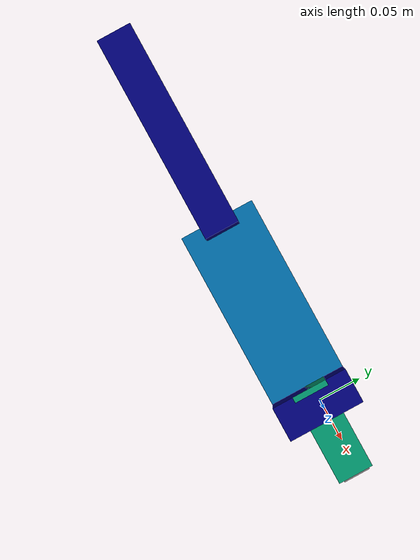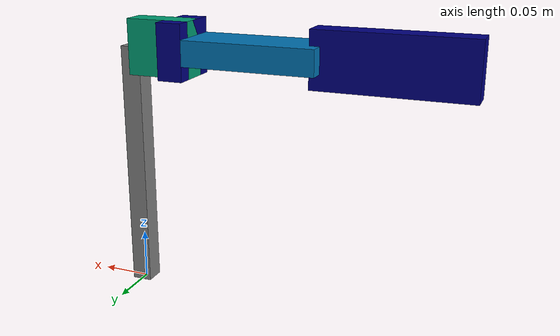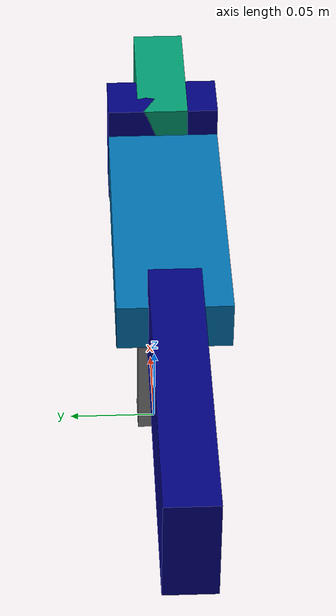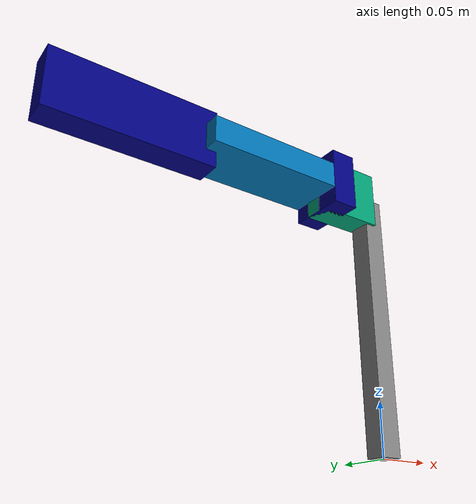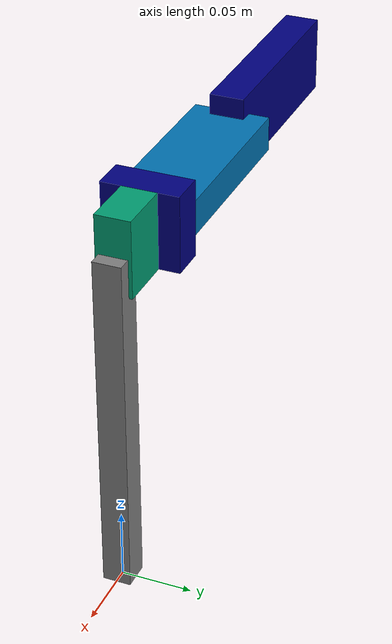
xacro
<?xml version="1.0"?>

<robot xmlns:xacro="http://www.ros.org/wiki/xacro" name="machine2">
    <!-- LAUNCH: ros2 launch urdf_tutorial display.launch.py model:=/home/marvin/machine2_ws/src/machine2_description/urdf/machine2.urdf.xacro -->

    <!-- PROPERTIES = VARIABLES -->
    <xacro:property name="PI" value="3.14159"/>
    <xacro:property name="effort" value="1000.0"/>
    <xacro:property name="velocity" value="2.5"/>

    <!-- MACROS = FUNCTIONS -->

    <!-- LINKS -->
    <link name="world"/>

    <link name="base_link">
        <visual>
            <origin xyz="0 0 ${0.25 / 2}" rpy="0 0 0"/>
            <geometry>
                <!-- length, width, height in meters -->
                <box size="0.02 0.02 0.25" />
            </geometry>
            <material name="grey">
                <color rgba="0.5 0.5 0.5 1" />
            </material>
        </visual>
    </link>

    <link name="shoulder_link">
        <visual>
            <origin xyz="0 0 ${0.065 / 2}" rpy="0 0 0"/>
            <geometry>
                <!-- length, width, height in meters -->
                <box size="0.055 0.025 0.065" />
            </geometry>
        </visual>
    </link>

    <link name="shoulder_y_link">
        <visual>
            <origin xyz="0 0 0" rpy="0 0 0"/>
            <geometry>
                <box size="0.055 0.055 0.025" />
            </geometry>
            <material name="blue">
                <color rgba="0 0 0.5 1" />
            </material>
        </visual>
    </link>

    <link name="shoulder_x_link">
        <visual>
            <origin xyz="0 0 ${0.13 / 2}" rpy="0 0 0"/>
            <geometry>
                <box size="0.025 0.055 0.13" />
            </geometry>
        </visual>
    </link>

    <link name="knee_link">
        <visual>
            <origin xyz="0 0 ${0.13 / 2}" rpy="0 0 0"/>
            <geometry>
                <box size="0.055 0.025 0.15" />
            </geometry>
            <material name="blue">
                <color rgba="0 0 0.5 1" />
            </material>
        </visual>
    </link>

    <!-- JOINTS -->
    <joint name="virtual_joint" type="fixed">
        <parent link="world"/>
        <child link="base_link"/>
        <origin xyz="0 0 0" rpy="0 0 0"/>
    </joint>

    <joint name="shoulder_joint" type="fixed">
        <parent link="base_link"/>
        <child link="shoulder_link"/>
        <origin xyz="0 0 0.25" rpy="0 -${PI / 2} 0"/>
    </joint>

    <joint name="shoulder_y_axis_joint" type="revolute">
        <parent link="shoulder_link"/>
        <child link="shoulder_y_link"/>
        <axis xyz="1.0 0 0"/>
        <origin xyz="0 0 ${0.065 - 0.025 / 2}" rpy="0 0 0"/>
        <limit lower="-${PI / 2}" upper="${PI / 2}" effort="${effort}" velocity="${velocity}"/>
    </joint>

    <joint name="shoulder_x_axis_joint" type="revolute">
        <parent link="shoulder_y_link"/>
        <child link="shoulder_x_link"/>
        <axis xyz="0 1.0 0"/>
        <origin xyz="0 0 ${0.025 / 2}" rpy="0 0 0"/>
        <limit lower="-${PI / 2}" upper="${PI / 2}" effort="${effort}" velocity="${velocity}"/>
    </joint>

    <joint name="knee_joint" type="revolute">
        <parent link="shoulder_x_link"/>
        <child link="knee_link"/>
        <axis xyz="0 1.0 0"/>
        <origin xyz="0 0 0.13" rpy="0 0 0"/>
        <limit lower="-${PI / 2 + PI / 4}" upper="0" effort="${effort}" velocity="${velocity}"/>
    </joint>

    <!-- ROS CONTROL DESCRIPTION -->
    <ros2_control name="FullRobotSystem" type="system">

        <hardware>
            <!-- plugin self-defined in machine2_hardware_interfaces machine2_controller.cpp -->
            <!-- here we load hardware interfaces and then the controller loads this urdf -->
            <plugin>machine_hardware_interface/MachineSystem</plugin>
        </hardware>

        <joint name="shoulder_y_axis_joint">
            <command_interface name="position">
                <param name="min">-${PI / 2}</param>
                <param name="max">${PI / 2}</param>
            </command_interface>
            <command_interface name="velocity">
                <param name="min">-3.15</param>
                <param name="max">3.15</param>
            </command_interface>
            <state_interface name="position">
                <param name="initial_value">0.0</param>
            </state_interface>
            <state_interface name="velocity"/>
        </joint>

        <joint name="shoulder_x_axis_joint">
            <command_interface name="position">
                <param name="min">-${PI / 2}</param>
                <param name="max">${PI / 2}</param>
            </command_interface>
            <command_interface name="velocity">
                <param name="min">-3.15</param>
                <param name="max">3.15</param>
            </command_interface>
            <state_interface name="position">
                <param name="initial_value">0.0</param>
            </state_interface>
            <state_interface name="velocity"/>
        </joint>

        <joint name="knee_joint">
            <command_interface name="position">
                <param name="min">-${PI / 2 + PI / 4}</param>
                <param name="max">0.0</param>
            </command_interface>
            <command_interface name="velocity">
                <param name="min">-3.15</param>
                <param name="max">3.15</param>
            </command_interface>
            <state_interface name="position">
                <param name="initial_value">0.0</param>
            </state_interface>
            <state_interface name="velocity"/>
        </joint>

    </ros2_control>

</robot>
